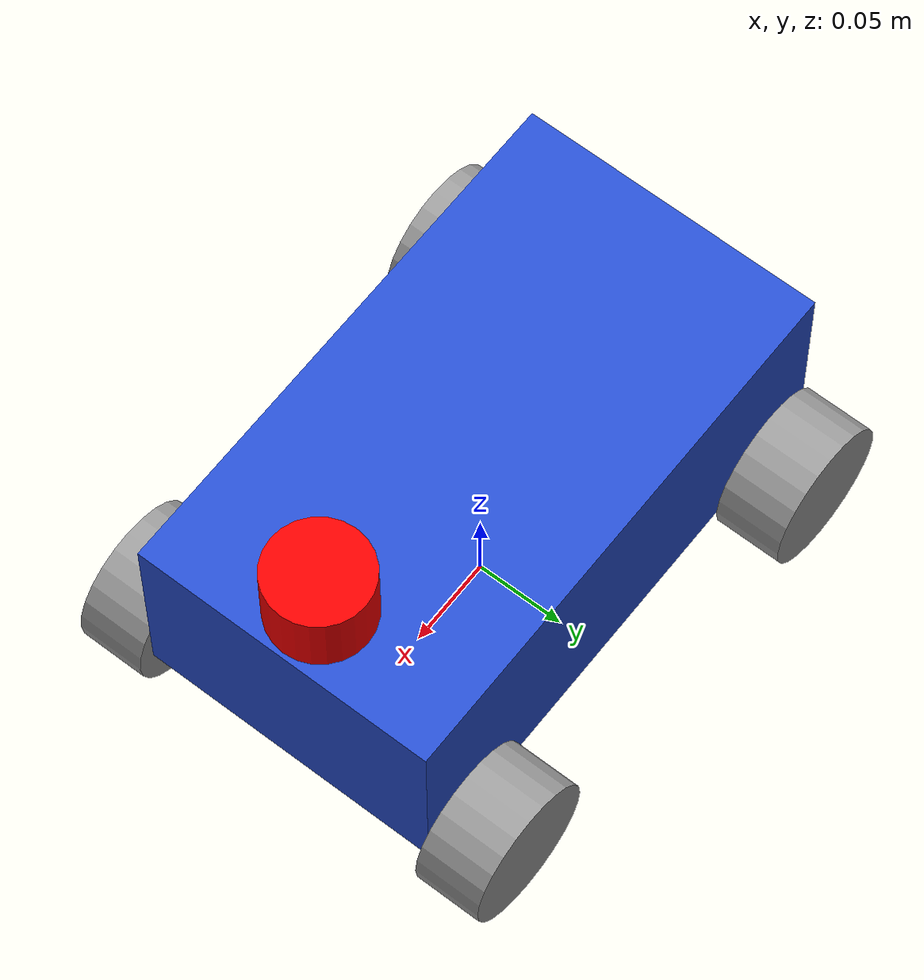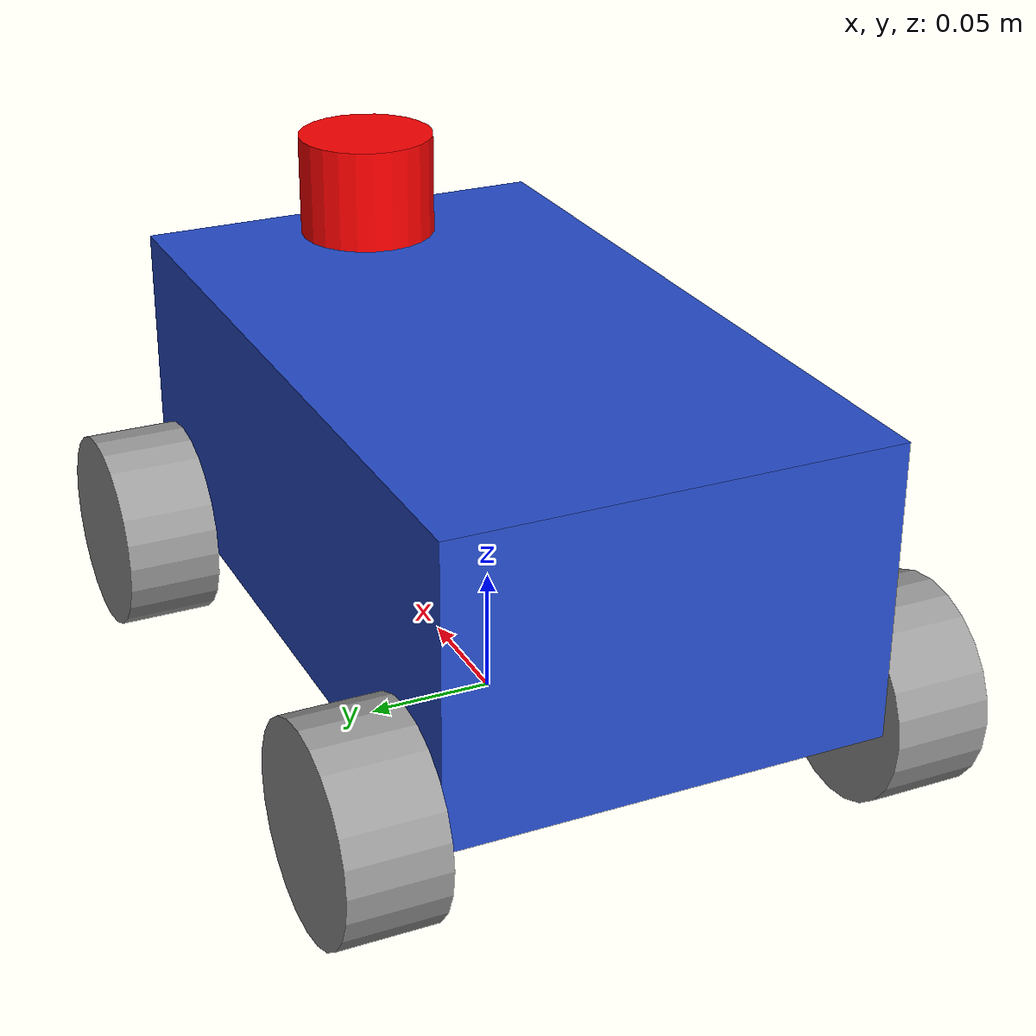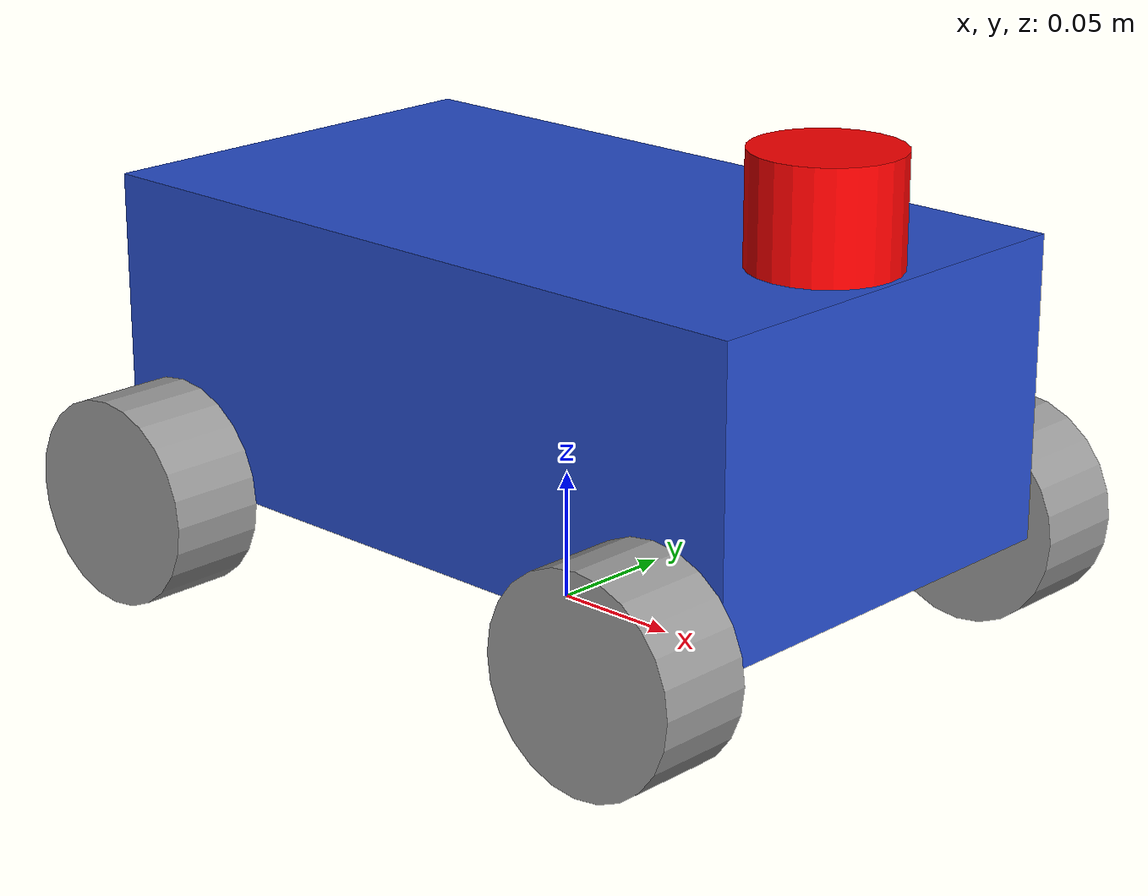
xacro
<?xml version="1.0"?>
<robot xmlns:xacro="http://www.ros.org/wiki/xacro">

    <xacro:property name="base_length" value="0.3"/>
    <xacro:property name="base_width" value="0.1702"/>
    <xacro:property name="base_height" value="0.115"/>
    <xacro:property name="wheel_radius" value="0.04"/>
    <xacro:property name="wheel_length" value="0.0374"/>

    <xacro:property name="laser_dia" value="0.0556"/>
    <xacro:property name="laser_hgt" value="0.0413"/>
    <xacro:property name="laser_mass" value="0.11"/>

    <!-- Compute inertia for a solid cylinder about center -->
    <xacro:property name="laser_ixx"
                    value="${(1.0/12.0) * laser_mass * (3*((laser_dia/2)* (laser_dia/2)) + laser_hgt * laser_hgt)}"/>
    <xacro:property name="laser_iyy" value="${laser_ixx}"/>
    <xacro:property name="laser_izz"
                    value="${0.5 * laser_mass * ((laser_dia/2) * (laser_dia/2))}"/>

    <link name="base_footprint"/>

    <link name="base_link">
        <visual>
            <geometry>
                <box size="${base_length} ${base_width} ${base_height}"/>
            </geometry>
            <origin xyz="0 0 ${base_height/ 2.0}" rpy="0 0 0"/>
            <material name="blue"/>
        </visual>
        <collision>
            <geometry>
                <box size="${base_length} ${base_width} ${base_height}"/>
            </geometry>
            <origin xyz="0 0 ${base_height/ 2.0}" rpy="0 0 0"/>
        </collision>
        <xacro:box_inertia m="2.02" x="${base_length}" y="${base_width}" z="${base_height}"
                           o_xyz="0 0 ${base_height/ 2.0}" o_rpy="0 0 0"/>
    </link>

    <xacro:macro name="wheel_link" params="prefix">
        <link name="${prefix}_wheel_link">
            <visual>
                <geometry>
                    <cylinder radius="${wheel_radius}" length="${wheel_length}"/>
                </geometry>
                <origin xyz="0 0 0" rpy="${pi/2.0} 0 0"/>
                <material name="grey"/>
            </visual>
            <collision>
                <geometry>
                    <sphere radius="${wheel_radius}"/>
                </geometry>
                <origin xyz="0 0 0" rpy="0 0 0"/>
            </collision>
            <xacro:cylinder_inertia m="0.1185" r="${wheel_radius}" l="${wheel_length}"
                                    o_xyz="0 0 0" o_rpy="${pi/2.0} 0 0"/>
        </link>
    </xacro:macro>

    <xacro:wheel_link prefix="right_rear"/>
    <xacro:wheel_link prefix="left_rear"/>
    <xacro:wheel_link prefix="right_front"/>
    <xacro:wheel_link prefix="left_front"/>

    <link name="laser_frame">
        <!-- Inertial -->
        <inertial>
            <mass value="${laser_mass}"/>                 <!-- kg -->
            <inertia
                    ixx="${laser_ixx}"
                    iyy="${laser_iyy}"
                    izz="${laser_izz}"
                    ixy="0.0" ixz="0.0" iyz="0.0"/>
        </inertial>

        <!-- Visual -->
        <visual>
            <origin xyz="0 0 0" rpy="0 0 0"/>
            <geometry>
                <cylinder
                        length="${laser_hgt}"
                        radius="${laser_dia/2}"/>
            </geometry>
            <material name="laser_red">
                <color rgba="1 0 0 1"/>
            </material>
        </visual>

        <!-- Collision (same shape as visual) -->
        <collision>
            <origin xyz="0 0 0" rpy="0 0 0"/>
            <geometry>
                <cylinder
                        length="${laser_hgt}"
                        radius="${laser_dia/2}"/>
            </geometry>
        </collision>
    </link>

    <joint name="base_joint" type="fixed">
        <parent link="base_footprint"/>
        <child link="base_link"/>
        <origin xyz="0 0 ${wheel_radius}" rpy="0 0 0"/>
    </joint>

    <joint name="base_right_rear_wheel_joint" type="continuous">
        <parent link="base_link"/>
        <child link="right_rear_wheel_link"/>
        <origin xyz="${-base_length / 2.5} ${-(base_width + wheel_length)/2.0} 0" rpy="0 0 0"/>
        <axis xyz="0 1 0"/>
    </joint>

    <joint name="base_left_rear_wheel_joint" type="continuous">
        <parent link="base_link"/>
        <child link="left_rear_wheel_link"/>
        <origin xyz="${-base_length / 2.5} ${(base_width + wheel_length)/2.0} 0" rpy="0 0 0"/>
        <axis xyz="0 1 0"/>
    </joint>

    <joint name="base_left_front_wheel_joint" type="continuous">
        <parent link="base_link"/>
        <child link="left_front_wheel_link"/>
        <origin xyz="${base_length / 2.5} ${(base_width + wheel_length)/2.0} 0" rpy="0 0 0"/>
        <axis xyz="0 1 0"/>
    </joint>

    <joint name="base_right_front_wheel_joint" type="continuous">
        <parent link="base_link"/>
        <child link="right_front_wheel_link"/>
        <origin xyz="${base_length / 2.5} ${-(base_width + wheel_length)/2.0} 0" rpy="0 0 0"/>
        <axis xyz="0 1 0"/>
    </joint>

    <joint name="laser_mount" type="fixed">
        <parent link="base_link"/>
        <child  link="laser_frame"/>
        <origin xyz="0.12 0 ${(base_height + (0.0413/2.0))}" rpy="3.1416 0  0"/>
    </joint>

</robot>
